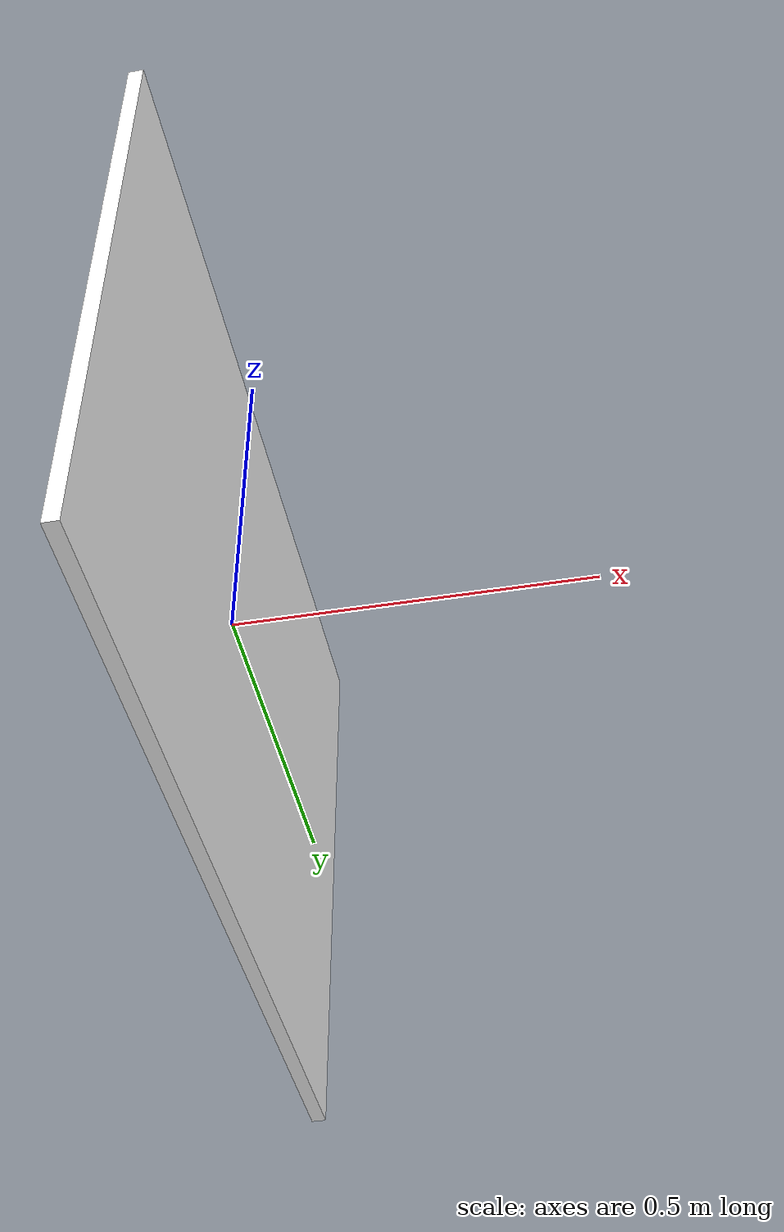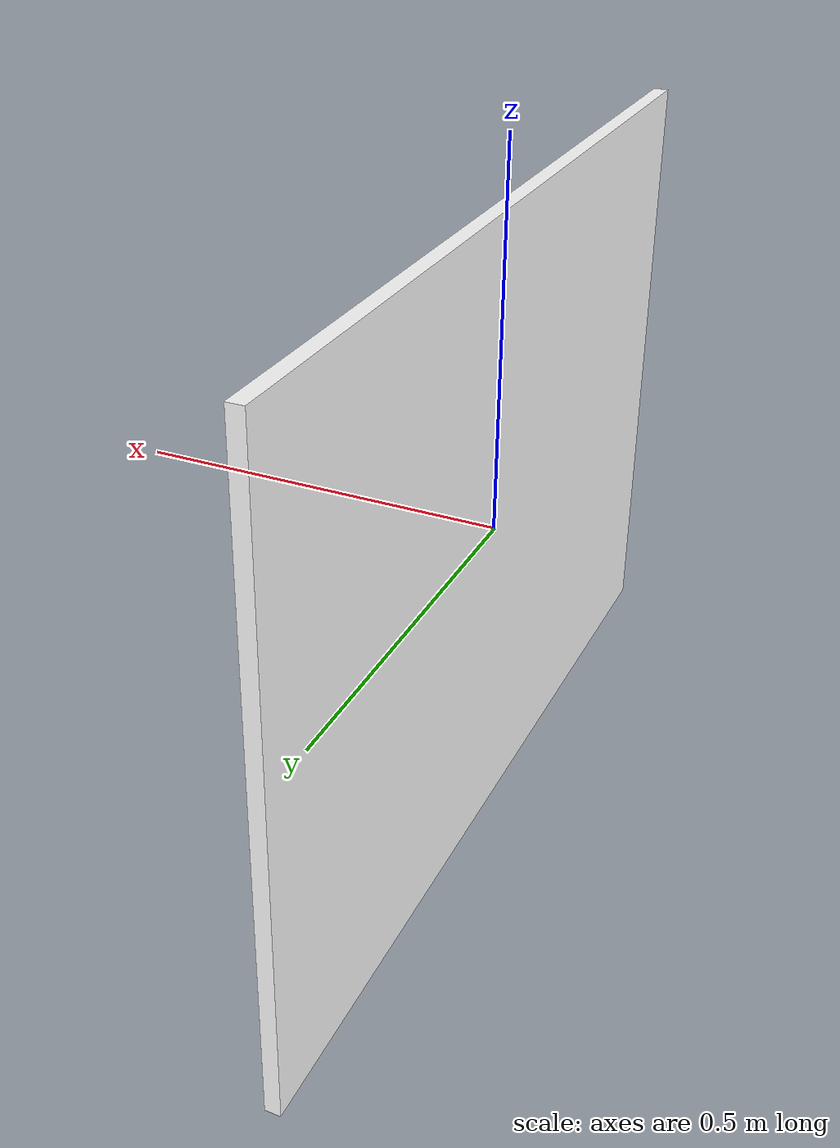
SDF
<?xml version="1.0" ?>
<sdf version="1.8">
  <model name="charuco_target">
    <static>true</static>

    <link name="target_link">
      <visual name="target_visual">
        <geometry>
          <box>
            <size>0.02 1.200000 0.840000</size>
          </box>
        </geometry>

        <material>
          <ambient>1 1 1 1</ambient>
          <diffuse>1 1 1 1</diffuse>
          <specular>0.1 0.1 0.1 1</specular>
          <pbr>
            <metal>
              <albedo_map>model://charuco_target/materials/textures/charuco_board.png</albedo_map>
              <roughness>0.8</roughness>
              <metalness>0.0</metalness>
            </metal>
          </pbr>
        </material>
      </visual>

      <collision name="target_collision">
        <geometry>
          <box>
            <size>0.02 1.200000 0.840000</size>
          </box>
        </geometry>
      </collision>
    </link>
  </model>
</sdf>
